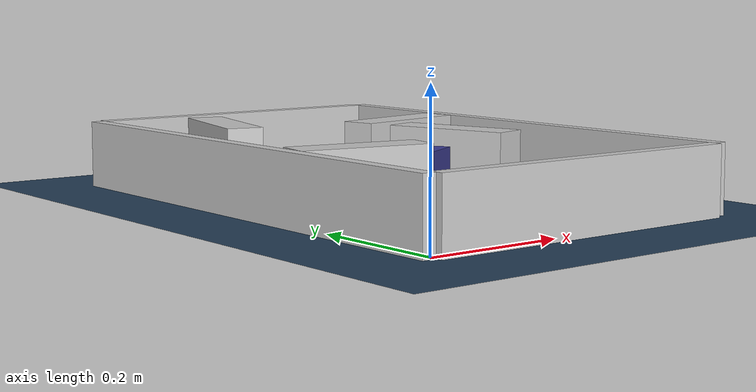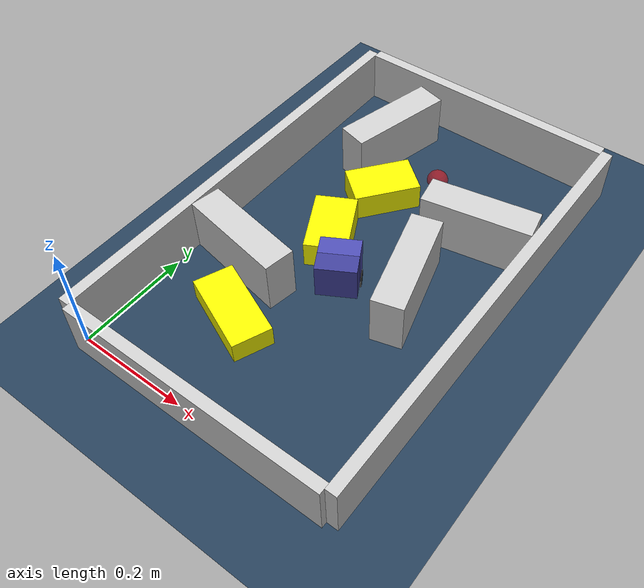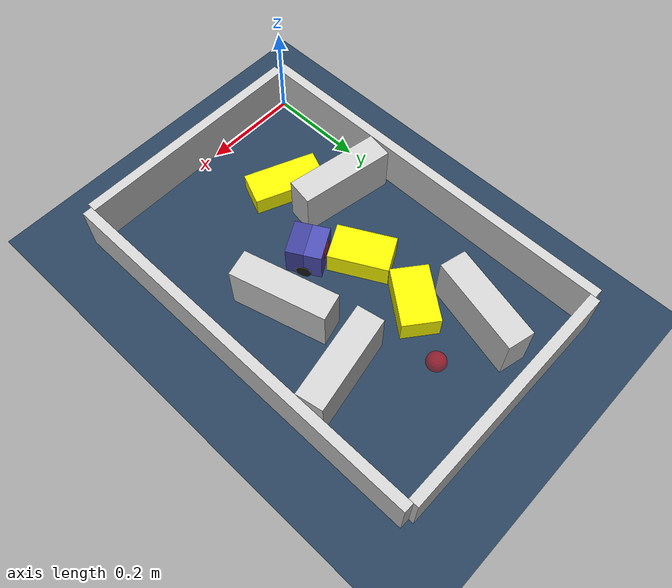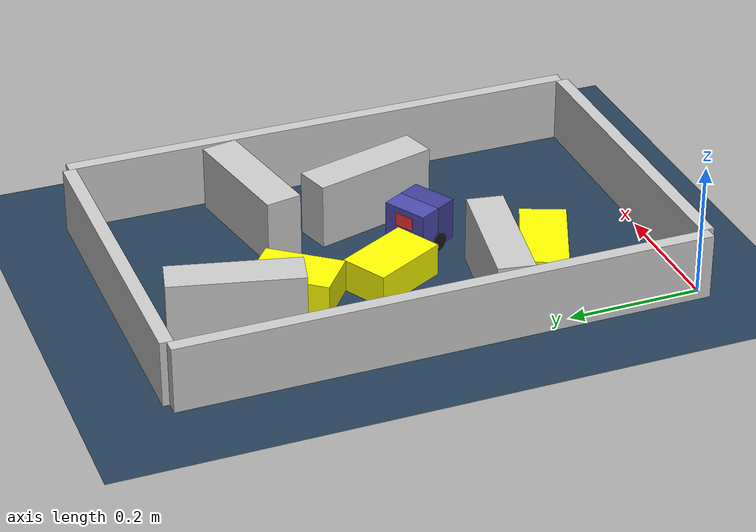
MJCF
<?xml version='1.0' encoding='utf-8'?>
<mujoco model="real_buildable">
  <compiler angle="degree" />
  <option timestep="0.002" integrator="implicitfast" iterations="100" cone="elliptic" />
  <default>
    <geom density="1" />
  </default>
  <asset>
    <texture builtin="gradient" height="3072" rgb1="0.3 0.5 0.7" rgb2="0 0 0" type="skybox" width="512" />
    <texture builtin="checker" height="300" mark="edge" markrgb="0.8 0.8 0.8" name="groundplane" rgb1="0.2 0.3 0.4" rgb2="0.1 0.2 0.3" type="2d" width="300" />
    <material name="groundplane" reflectance="0.2" texrepeat="5 5" texture="groundplane" texuniform="true" />
  </asset>
  <worldbody>
    <light dir="0 0 -1" directional="true" pos="0 0 1.5" />
    <geom name="floor" type="plane" condim="4" friction="0.5 0.005 0.001" material="groundplane" size="0 0 0.05" />
    <body name="walls">
      <geom name="wall_boundary_left" type="box" condim="4" friction="1.0 0.005 0.0001" rgba="0.8 0.8 0.8 1" pos="-0.010000 0.387500 0.050000" euler="0 0 0.000000" size="0.010000 0.397500 0.050000" />
      <geom name="wall_boundary_right" type="box" condim="4" friction="1.0 0.005 0.0001" rgba="0.8 0.8 0.8 1" pos="0.500000 0.387500 0.050000" euler="0 0 0.000000" size="0.010000 0.397500 0.050000" />
      <geom name="wall_boundary_bottom" type="box" condim="4" friction="1.0 0.005 0.0001" rgba="0.8 0.8 0.8 1" pos="0.245000 -0.010000 0.050000" euler="0 0 0.000000" size="0.245000 0.010000 0.050000" />
      <geom name="wall_boundary_top" type="box" condim="4" friction="1.0 0.005 0.0001" rgba="0.8 0.8 0.8 1" pos="0.245000 0.785000 0.050000" euler="0 0 0.000000" size="0.245000 0.010000 0.050000" />
      <geom name="wall_inner_1" type="box" condim="4" friction="1.0 0.005 0.0001" rgba="0.8 0.8 0.8 1" pos="0.100786 0.264573 0.050000" euler="0 0 170.045787" size="0.097500 0.027500 0.050000" />
      <geom name="wall_inner_2" type="box" condim="4" friction="1.0 0.005 0.0001" rgba="0.8 0.8 0.8 1" pos="0.357958 0.369672 0.050000" euler="0 0 105.422125" size="0.097500 0.027500 0.050000" />
      <geom name="wall_inner_3" type="box" condim="4" friction="1.0 0.005 0.0001" rgba="0.8 0.8 0.8 1" pos="0.389000 0.538000 0.050000" euler="0 0 10.700000" size="0.097500 0.027500 0.050000" />
      <geom name="wall_inner_4" type="box" condim="4" friction="1.0 0.005 0.0001" rgba="0.8 0.8 0.8 1" pos="0.133000 0.647000 0.050000" euler="0 0 76.100000" size="0.097500 0.027500 0.050000" />
    </body>
    <body name="car" pos="0.25307148527560214 0.32607939577855682 0.01" quat="0.5050338074903864 0 0 0.86309956163339774">
      <freejoint name="car_freejoint" />
      <inertial pos="0 0 0.0375" mass="0.35" diaginertia="0.000266 0.000266 0.000286" />
      <geom name="front_chassis_collision" type="box" pos="0.0175 0 0.0375" size="0.0175 0.035 0.0325" rgba="0.3 0.3 0.7 1" />
      <geom name="rear_chassis_collision" type="box" pos="-0.0175 0 0.0375" size="0.0175 0.035 0.0325" rgba="0.25 0.25 0.6 1" />
      <geom name="front_marker" type="box" pos="0.034 0 0.0505" size="0.002 0.015 0.01" rgba="1 0.2 0.2 1" contype="0" conaffinity="0" />
      <body name="rear_support_body" pos="-0.03 0 0.0025">
        <joint name="rear_caster_joint" type="ball" damping="0.0001" />
        <inertial pos="0 0 0" mass="0.025" diaginertia="0.000001 0.000001 0.000001" />
        <geom name="rear_support" type="sphere" pos="0 0 0" size="0.0025" friction="0 0 0" rgba="0.7 0.1 0.1 1" />
      </body>
      <body name="front_support_body" pos="0.03 0 0.0025">
        <joint name="front_caster_joint" type="ball" damping="0.0001" />
        <inertial pos="0 0 0" mass="0.025" diaginertia="0.000001 0.000001 0.000001" />
        <geom name="front_support" type="sphere" pos="0 0 0" size="0.0025" friction="0 0 0" rgba="0.1 0.7 0.1 1" />
      </body>
      <body name="left_wheel" pos="0 0.0375 0.015">
        <inertial pos="0 0 0" mass="0.05" diaginertia="0.000003 0.000006 0.000003" />
        <joint name="left_wheel_joint" type="hinge" axis="0 1 0" damping="0.01" armature="0.0001" />
        <geom name="left_wheel_collision" type="cylinder" size="0.015 0.0005" euler="90 0 0" rgba="0.1 0.1 0.1 1" />
      </body>
      <body name="right_wheel" pos="0 -0.0375 0.015">
        <inertial pos="0 0 0" mass="0.05" diaginertia="0.000003 0.000006 0.000003" />
        <joint name="right_wheel_joint" type="hinge" axis="0 1 0" damping="0.01" armature="0.0001" />
        <geom name="right_wheel_collision" type="cylinder" size="0.015 0.0005" euler="90 0 0" rgba="0.1 0.1 0.1 1" />
      </body>
    </body>
    <body name="obstacle_0_movable">
      <geom name="obstacle_0_movable" condim="4" pos="0.18050033487434686 0.39862995712940141 0.025000000000000001" friction="1 0.005 0.0001" rgba="1 1 0 1" size="0.037500 0.060000 0.025000" type="box" mass="0.1" quat="0.97030086059820586 0 0 0.24190130202704804" />
      <joint type="free" />
    </body>
    <body name="obstacle_1_movable">
      <geom name="obstacle_1_movable" condim="4" pos="0.1893216647194213 0.53757467098065792 0.025000000000000001" friction="1 0.005 0.0001" rgba="1 1 0 1" size="0.037500 0.060000 0.025000" type="box" mass="0.1" quat="0.94512504181114487 0 0 -0.32670882348274838" />
      <joint type="free" />
    </body>
    <body name="obstacle_2_movable">
      <geom name="obstacle_2_movable" condim="4" pos="0.15972000000000006 0.1686440000000001 0.02" friction="1 0.005 0.0001" rgba="1 1 0 1" size="0.035000 0.075000 0.020000" type="box" mass="0.1" quat="0.83321794604407662 0 0 0.55294471187460525" />
      <joint type="free" />
    </body>
    <site name="goal" type="sphere" pos="0.245000 0.640000 0.0" size="0.02" rgba="1 0 0 0.5" />
  </worldbody>
  <actuator>
    <velocity name="left_wheel_drive" joint="left_wheel_joint" ctrlrange="-25 25" kv="0.75" forcerange="-0.5 0.5" />
    <velocity name="right_wheel_drive" joint="right_wheel_joint" ctrlrange="-25 25" kv="0.75" forcerange="-0.5 0.5" />
  </actuator>
</mujoco>
